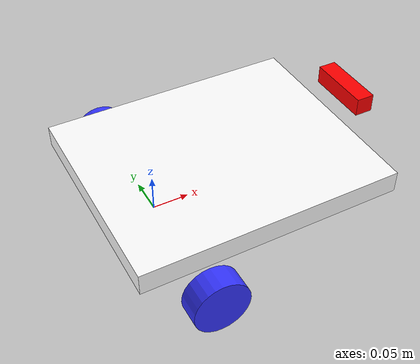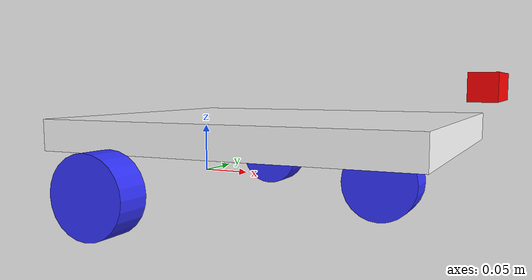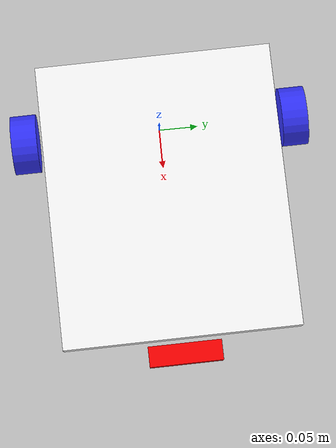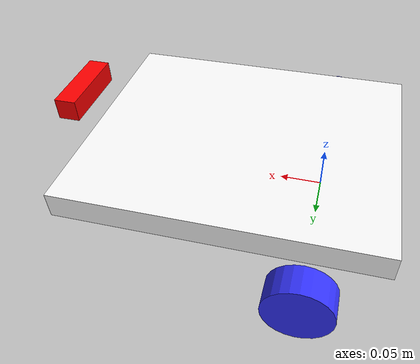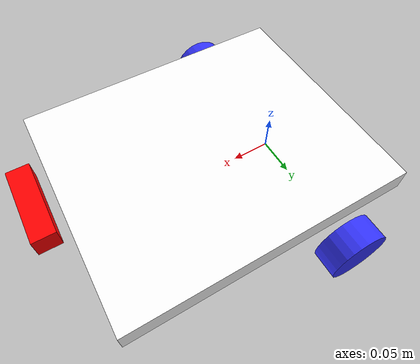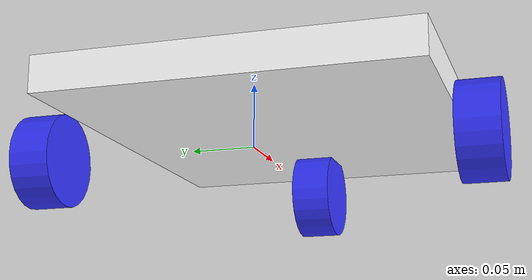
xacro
<?xml version="1.0"?>
<robot xmlns:xacro="http://www.ros.org/wiki/xacro"  name="robot">

    <xacro:arg name="use_ros2_control" default="true"/>

    <xacro:arg name="cam_width"  default="320"/>
    <xacro:arg name="cam_height" default="240"/>
    <xacro:arg name="cam_rate"   default="15"/>
    <xacro:arg name="cam_far"    default="30.0"/>
    <xacro:arg name="depth_far"  default="8.0"/>

    <xacro:include filename="robot_core.xacro"/>
    <xacro:if value="$(arg use_ros2_control)">
        <xacro:include filename="ros2_control.xacro"/>
    </xacro:if>
    <xacro:unless value="$(arg use_ros2_control)">
        <xacro:include filename="gazebo_control.xacro"/>
    </xacro:unless>
    <xacro:include filename="camera.xacro"/>
    <xacro:include filename="depth_camera.xacro"/>
    <xacro:include filename="camera_gazebo_sensors.xacro"/>

</robot>

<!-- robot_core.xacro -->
<robot xmlns:xacro="http://www.ros.org/wiki/xacro">

    <xacro:include filename="inertial_macros.xacro"/>

    <xacro:property name="chassis_mass" value="1.5"/>
    <xacro:property name="wheel_radius" value="0.038"/>
    <xacro:property name="wheel_thickness" value="0.033"/>
    <xacro:property name="wheel_mass" value="0.25"/>
    <xacro:property name="chassis_length" value="0.36"/>
    <xacro:property name="chassis_width" value="0.30"/>
    <xacro:property name="chassis_height" value="0.03"/>
    <xacro:property name="chassis_bottom_from_floor" value="0.07"/>
    <!-- base_link stays on the midpoint of the driven rear axle. -->
    <xacro:property name="chassis_center_x" value="0.095"/>
    <xacro:property name="chassis_center_z" value="${chassis_bottom_from_floor + chassis_height/2 - wheel_radius}"/>
    <xacro:property name="rear_wheel_offset_x" value="0.0"/>
    <xacro:property name="wheel_offset_y" value="0.1745"/>
    <xacro:property name="wheel_offset_z" value="0"/>
    <!-- Real camera is mounted on a bracket, shifted forward and raised above the chassis roof. -->
    <xacro:property name="camera_mount_x" value="0.2015"/>
    <xacro:property name="camera_mount_z" value="0.0450"/>
    <xacro:property name="caster_wheel_offset_x" value="${camera_mount_x}"/>

    <material name="white">
        <color rgba="1 1 1 1"/>
    </material>

    <material name="orange">
        <color rgba="1 0.3 0.1 1"/>
    </material>

    <material name="blue">
        <color rgba="0.2 0.2 1 1"/>
    </material>

    <material name="black">
        <color rgba="0 0 0 1"/>
    </material>

    <material name="red">
        <color rgba="1 0 0 1"/>
    </material>

    <!-- BASE LINK -->

    <link name="base_link">

    </link>

    <!-- BASE_FOOTPRINT LINK -->

    <joint name="base_footprint_joint" type="fixed">
        <parent link="base_link"/>
        <child link="base_footprint"/>
        <origin xyz="0 0 -${wheel_radius}" rpy="0 0 0"/>
    </joint>

    <link name="base_footprint">
    </link>

    <!-- CHASSIS LINK -->

    <joint name="chassis_joint" type="fixed">
        <parent link="base_link"/>
        <child link="chassis"/>
        <origin xyz="${chassis_center_x} 0 ${chassis_center_z}"/>
    </joint>

    <link name="chassis">
        <visual>
            <geometry>
                <box size="${chassis_length} ${chassis_width} ${chassis_height}"/>
            </geometry>
            <material name="white"/>
        </visual>
        <collision>
            <geometry>
                <box size="${chassis_length} ${chassis_width} ${chassis_height}"/>
            </geometry>
        </collision>
        <xacro:inertial_box mass="${chassis_mass}" x="${chassis_length}" y="${chassis_width}" z="${chassis_height}">
            <origin xyz="0 0 0" rpy="0 0 0"/>
        </xacro:inertial_box>
    </link>

    <gazebo reference="chassis">
        <material>Gazebo/White</material>
        <transparency>0.0</transparency>
    </gazebo>

    <!-- LEFT WHEEL LINK -->

    <joint name="left_wheel_joint" type = "continuous">
        <parent link="base_link"/>
        <child link="left_wheel"/>
        <origin xyz="${rear_wheel_offset_x} ${wheel_offset_y} 0" rpy="-${pi/2} 0 0"/>
        <axis xyz="0 0 1"/>
        <limit effort="10.0" velocity="10.0"/>
    </joint>

    <link name="left_wheel">
        <visual>
            <geometry>
                <cylinder radius="${wheel_radius}" length="${wheel_thickness}"/>
            </geometry>
            <material name="blue"/>
        </visual>
        <collision>
            <geometry>
                <cylinder radius="${wheel_radius}" length="${wheel_thickness}"/>
            </geometry>
        </collision>
        <xacro:inertial_cylinder mass="${wheel_mass}" length="${wheel_thickness}" radius="${wheel_radius}">
            <origin xyz="0 0 0" rpy="0 0 0"/>
        </xacro:inertial_cylinder>
    </link>

    <gazebo reference="left_wheel">
        <material>Gazebo/Blue</material>
        <mu1>1.0</mu1>
        <mu2>1.0</mu2>
    </gazebo>

    <!-- RIGHT WHEEL LINK -->

    <joint name="right_wheel_joint" type = "continuous">
        <parent link="base_link"/>
        <child link="right_wheel"/>
        <origin xyz="${rear_wheel_offset_x} ${-wheel_offset_y} 0" rpy="${pi/2} 0 0"/>
        <axis xyz="0 0 -1"/>
        <limit effort="10.0" velocity="10.0"/>
    </joint>

    <link name="right_wheel">
        <visual>
            <geometry>
                <cylinder radius="${wheel_radius}" length="${wheel_thickness}"/>
            </geometry>
            <material name="blue"/>
        </visual>
        <collision>
            <geometry>
                <cylinder radius="${wheel_radius}" length="${wheel_thickness}"/>
            </geometry>
        </collision>
        <xacro:inertial_cylinder mass="${wheel_mass}" length="${wheel_thickness}" radius="${wheel_radius}">
            <origin xyz="0 0 0" rpy="0 0 0"/>
        </xacro:inertial_cylinder>
    </link>

    <gazebo reference="right_wheel">
        <material>Gazebo/Blue</material>
        <mu1>1.0</mu1>
        <mu2>1.0</mu2>
    </gazebo>

    <!-- FRONT CENTER CASTER WHEEL LINK -->

    <joint name="caster_wheel_joint" type="fixed">
        <parent link="base_link"/>
        <child link="caster_wheel"/>
        <origin xyz="${caster_wheel_offset_x} 0 0" rpy="-${pi/2} 0 0"/>
    </joint>

    <link name="caster_wheel">
        <visual>
            <geometry>
                <cylinder radius="${wheel_radius}" length="${wheel_thickness}"/>
            </geometry>
            <material name="blue"/>
        </visual>
        <collision>
            <!-- Passive omni support modelled as a sphere - point contact slides freely
                 in any direction (a fixed cylinder skids and blocks in-place rotation). -->
            <geometry>
                <sphere radius="${wheel_radius}"/>
            </geometry>
        </collision>
        <xacro:inertial_cylinder mass="${wheel_mass}" length="${wheel_thickness}" radius="${wheel_radius}">
            <origin xyz="0 0 0" rpy="0 0 0"/>
        </xacro:inertial_cylinder>
    </link>

    <gazebo reference="caster_wheel">
        <material>Gazebo/Blue</material>
        <!-- Frictionless so the passive support never resists driving/turning. -->
        <mu1>0.0</mu1>
        <mu2>0.0</mu2>
    </gazebo>
</robot>

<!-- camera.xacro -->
<robot xmlns:xacro="http://www.ros.org/wiki/xacro">

    <joint name="camera_joint" type="fixed">
        <parent link="chassis"/>
        <child link="camera_link"/>
        <origin xyz="${camera_mount_x} 0 ${camera_mount_z}" rpy="0 0 0"/>
    </joint>

    <link name="camera_link">
        <visual>
            <geometry>
                <box size="0.025 0.09 0.025"/>
            </geometry>
            <material name="red"/>
        </visual>
    </link>

    <joint name="camera_optical_joint" type="fixed">
        <parent link="camera_link"/>
        <child link="camera_link_optical"/>
        <origin xyz="0 0 0" rpy="${-pi/2} 0 ${-pi/2}"/>
    </joint>

    <link name="camera_link_optical"></link>

    <joint name="camera_color_optical_alias_joint" type="fixed">
        <parent link="camera_link_optical"/>
        <child link="camera_color_optical_frame"/>
        <origin xyz="0 0 0" rpy="0 0 0"/>
    </joint>

    <link name="camera_color_optical_frame"></link>
</robot>

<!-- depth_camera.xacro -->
<robot xmlns:xacro="http://www.ros.org/wiki/xacro">

    <joint name="depth_camera_joint" type="fixed">
        <parent link="camera_link"/>
        <child link="depth_camera_link"/>
        <origin xyz="0 0 0" rpy="0 0 0"/>
    </joint>

    <link name="depth_camera_link"></link>

    <joint name="depth_camera_optical_joint" type="fixed">
        <parent link="camera_link_optical"/>
        <child link="depth_camera_link_optical"/>
        <origin xyz="0 0 0" rpy="0 0 0"/>
    </joint>

    <link name="depth_camera_link_optical"></link>
</robot>
